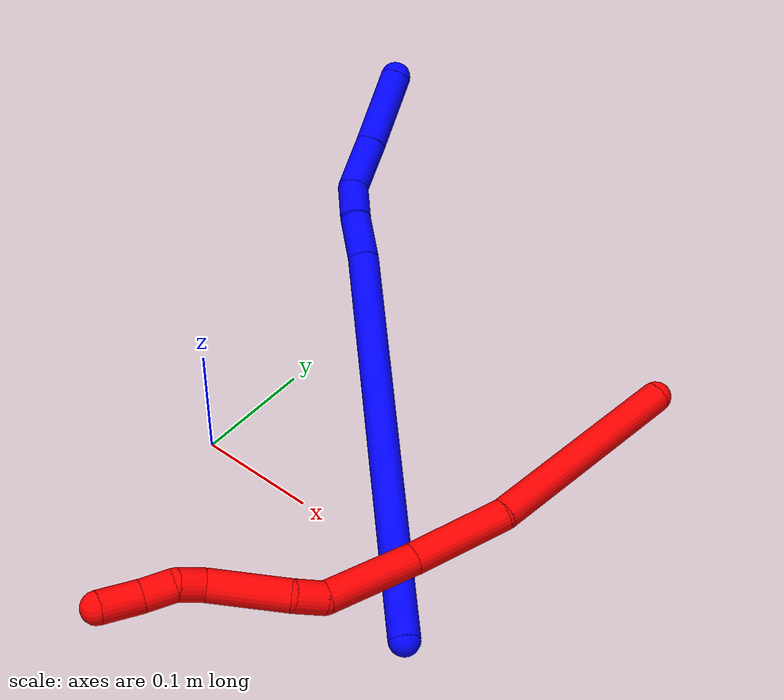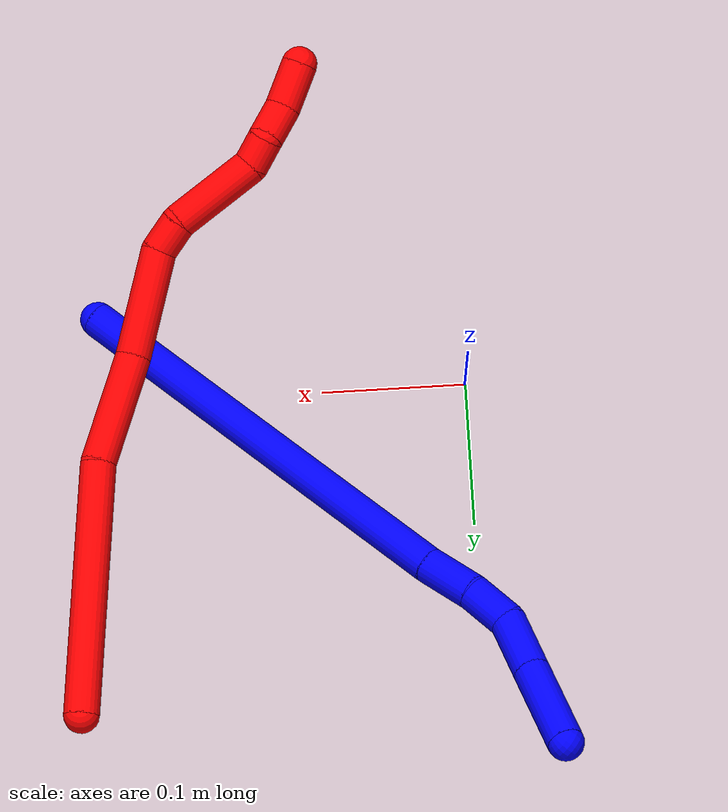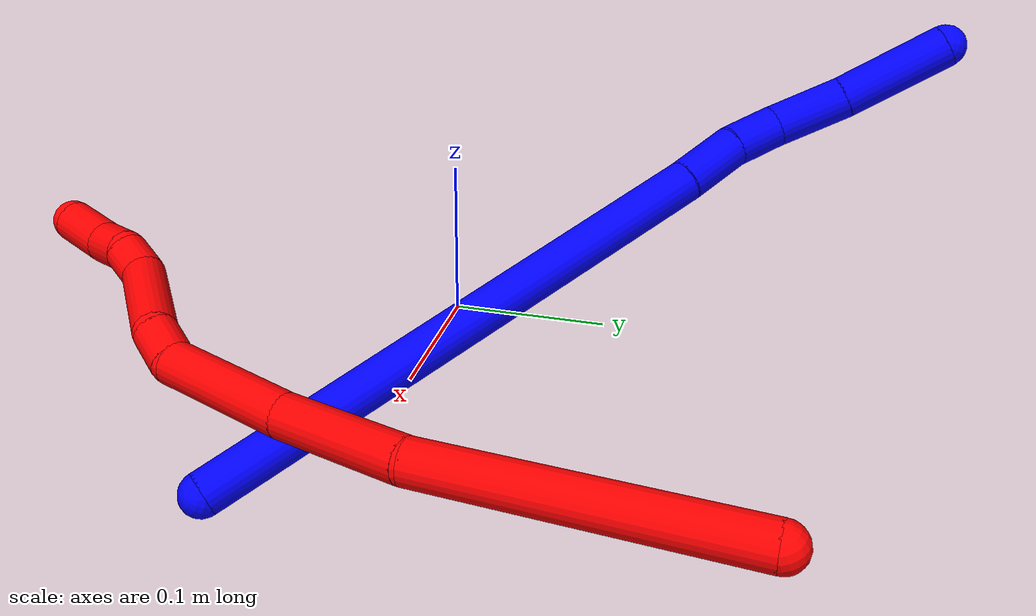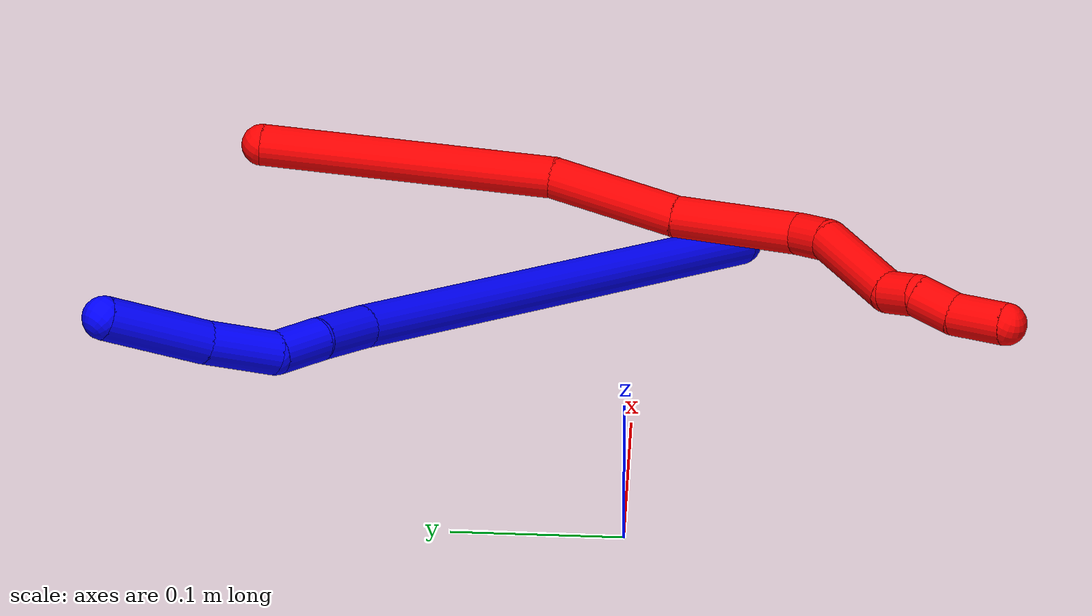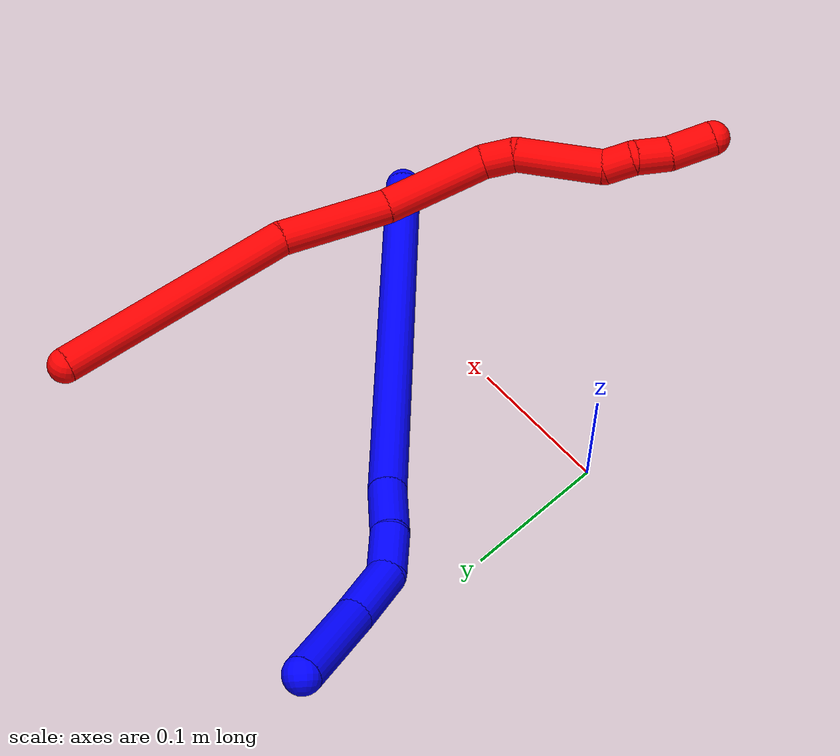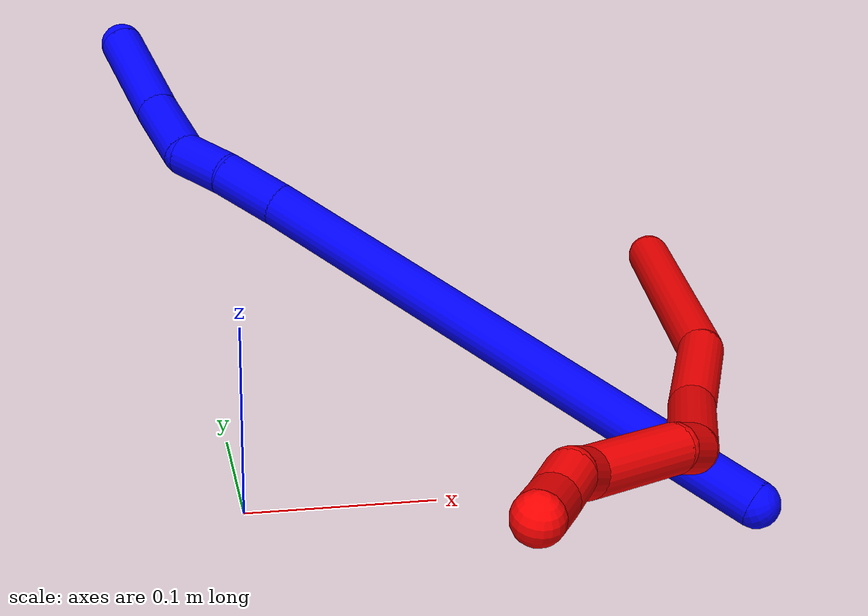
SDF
<sdf version="1.7">
 <world name="default">
  <plugin name="TubeGeneratorPlugin" filename="libtube_generator_plugin.so"/>
  <model name="photoneo_s_sensor">
   <static>1</static>
   <pose>0 0 2 1.57079 1.57079 3.14159</pose>
   <link name="link">
    <inertial><mass>0.1</mass></inertial>
    <sensor name="sensor" type="depth">
     <update_rate>30</update_rate>
     <camera>
      <horizontal_fov>1.22</horizontal_fov>
      <image><width>1920</width><height>1200</height><format>B8G8R8</format></image>
      <clip><near>0.1</near><far>4</far></clip>
      <depth_camera><output>points</output></depth_camera>
     </camera>
     <plugin name="camera_plugin" filename="libgazebo_ros_depth_camera.so">
      <baseline>0.2</baseline>
      <alwaysOn>1</alwaysOn>
      <updateRate>0.0</updateRate>
      <cameraName>camera_ir</cameraName>
      <imageTopicName>/camera/color/image_raw</imageTopicName>
      <cameraInfoTopicName>/camera/color/camera_info</cameraInfoTopicName>
      <depthImageTopicName>/camera/depth/image_raw</depthImageTopicName>
      <depthImageCameraInfoTopicName>/camera/depth/camera_info</depthImageCameraInfoTopicName>
      <pointCloudTopicName>/camera/depth/points</pointCloudTopicName>
      <frameName>fr_optical</frameName>
      <pointCloudCutoff>0.1</pointCloudCutoff>
      <pointCloudCutoffMax>2.0</pointCloudCutoffMax>
      <distortionK1>0</distortionK1>
      <distortionK2>0</distortionK2>
      <distortionK3>0</distortionK3>
      <distortionT1>0</distortionT1>
      <distortionT2>0</distortionT2>
      <CxPrime>0</CxPrime>
      <Cx>0</Cx>
      <Cy>0</Cy>
      <focalLength>0</focalLength>
      <hackBaseline>0</hackBaseline>
     </plugin>
    </sensor>
   </link>
  </model>
  <gravity>0 0 -9.8</gravity>
  <magnetic_field>6e-06 2.3e-05 -4.2e-05</magnetic_field>
  <atmosphere type="adiabatic"/>
  <physics name="default_physics" default="0" type="ode">
   <max_step_size>0.003</max_step_size>
   <real_time_factor>1</real_time_factor>
   <real_time_update_rate>1000</real_time_update_rate>
   <max_contacts>10000</max_contacts>
   <ode>
    <solver>
     <type>quick</type>
     <iters>100</iters>
     <sor>1.3</sor>
     <use_dynamic_moi_rescaling>0</use_dynamic_moi_rescaling>
    </solver>
    <constraints>
     <contact_max_correcting_vel>0</contact_max_correcting_vel>
     <contact_surface_layer>0.001</contact_surface_layer>
     <cfm>0</cfm>
     <erp>0.2</erp>
    </constraints>
   </ode>
  </physics>
  <scene><ambient>0.4 0.4 0.4 1</ambient><background>0.7 0.7 0.7 1</background><shadows>0</shadows></scene>
  <audio><device>default</device></audio>
  <spherical_coordinates>
   <surface_model>EARTH_WGS84</surface_model>
   <latitude_deg>0</latitude_deg>
   <longitude_deg>0</longitude_deg>
   <elevation>0</elevation>
   <heading_deg>0</heading_deg>
  </spherical_coordinates>
  <model name="bin">
   <static>1</static>
   <link name="bottom">
    <collision name="collision-bottom">
     <pose>0 0 -0.01 0 -0 0</pose>
     <geometry><box><size>0.8 0.6 0.02</size></box></geometry>
     <surface>
      <friction><ode><mu>100</mu><mu2>100</mu2></ode></friction>
      <contact><collide_bitmask>65535</collide_bitmask></contact>
     </surface>
    </collision>
   </link>
   <link name="west_wall">
    <collision name="collision-west_wall">
     <pose>-0.41 0 0.1 0 -0 0</pose>
     <geometry><box><size>0.02 0.6 0.2</size></box></geometry>
     <surface>
      <friction><ode><mu>100</mu><mu2>100</mu2></ode></friction>
      <contact><collide_bitmask>65535</collide_bitmask></contact>
     </surface>
    </collision>
   </link>
   <link name="east_wall">
    <collision name="collision-east_wall">
     <pose>0.41 0 0.1 0 -0 0</pose>
     <geometry><box><size>0.02 0.6 0.2</size></box></geometry>
     <surface>
      <friction><ode><mu>100</mu><mu2>100</mu2></ode></friction>
      <contact><collide_bitmask>65535</collide_bitmask></contact>
     </surface>
    </collision>
   </link>
   <link name="south_wall">
    <collision name="collision-south_wall">
     <pose>0 -0.31 0.1 0 -0 0</pose>
     <geometry><box><size>0.8 0.02 0.2</size></box></geometry>
     <surface>
      <friction><ode><mu>100</mu><mu2>100</mu2></ode></friction>
      <contact><collide_bitmask>65535</collide_bitmask></contact>
     </surface>
    </collision>
   </link>
   <link name="north_wall">
    <collision name="collision-north_wall">
     <pose>0 0.31 0.1 0 -0 0</pose>
     <geometry><box><size>0.8 0.02 0.2</size></box></geometry>
     <surface>
      <friction><ode><mu>100</mu><mu2>100</mu2></ode></friction>
      <contact><collide_bitmask>65535</collide_bitmask></contact>
     </surface>
    </collision>
   </link>
  </model>
  <model name="1">
   <static>0</static>
   <link name="1">
    <collision name="collision-cylinder-e_1_1_4">
     <pose>-0.066134 0.08305 0.120445 -0.603663 -0.424545 0.134</pose>
     <geometry><cylinder><radius>0.0125</radius><length>0.321111</length></cylinder></geometry>
     <surface>
      <friction><ode><mu>1.16</mu><mu2>1.16</mu2><slip1>0</slip1><slip2>0</slip2></ode></friction>
      <contact><ode><kp>1e+06</kp><kd>1</kd><max_vel>0</max_vel><min_depth>0.001</min_depth></ode></contact>
     </surface>
    </collision>
    <visual name="visual-cylinder-e_1_1_4">
     <pose>-0.066134 0.08305 0.120445 -0.603663 -0.424545 0.134</pose>
     <geometry><cylinder><radius>0.0125</radius><length>0.321111</length></cylinder></geometry>
     <material><ambient>0 0 1 1</ambient></material>
    </visual>
    <collision name="collision-cylinder-e_2_4_5">
     <pose>-0.139021 0.176937 0.25525 -0.646451 -0.359113 0.121453</pose>
     <geometry><cylinder><radius>0.0125</radius><length>0.038432</length></cylinder></geometry>
     <surface>
      <friction><ode><mu>1.16</mu><mu2>1.16</mu2><slip1>0</slip1><slip2>0</slip2></ode></friction>
      <contact><ode><kp>1e+06</kp><kd>1</kd><max_vel>0</max_vel><min_depth>0.001</min_depth></ode></contact>
     </surface>
    </collision>
    <visual name="visual-cylinder-e_2_4_5">
     <pose>-0.139021 0.176937 0.25525 -0.646451 -0.359113 0.121453</pose>
     <geometry><cylinder><radius>0.0125</radius><length>0.038432</length></cylinder></geometry>
     <material><ambient>0 0 1 1</ambient></material>
    </visual>
    <collision name="collision-cylinder-e_3_5_6">
     <pose>-0.152063 0.194496 0.282812 -0.471001 -0.401463 0.09757</pose>
     <geometry><cylinder><radius>0.0125</radius><length>0.032187</length></cylinder></geometry>
     <surface>
      <friction><ode><mu>1.16</mu><mu2>1.16</mu2><slip1>0</slip1><slip2>0</slip2></ode></friction>
      <contact><ode><kp>1e+06</kp><kd>1</kd><max_vel>0</max_vel><min_depth>0.001</min_depth></ode></contact>
     </surface>
    </collision>
    <visual name="visual-cylinder-e_3_5_6">
     <pose>-0.152063 0.194496 0.282812 -0.471001 -0.401463 0.09757</pose>
     <geometry><cylinder><radius>0.0125</radius><length>0.032187</length></cylinder></geometry>
     <material><ambient>0 0 1 1</ambient></material>
    </visual>
    <collision name="collision-cylinder-e_4_6_7">
     <pose>-0.175037 0.207954 0.308594 -0.491585 -0.863219 0.230062</pose>
     <geometry><cylinder><radius>0.0125</radius><length>0.043913</length></cylinder></geometry>
     <surface>
      <friction><ode><mu>1.16</mu><mu2>1.16</mu2><slip1>0</slip1><slip2>0</slip2></ode></friction>
      <contact><ode><kp>1e+06</kp><kd>1</kd><max_vel>0</max_vel><min_depth>0.001</min_depth></ode></contact>
     </surface>
    </collision>
    <visual name="visual-cylinder-e_4_6_7">
     <pose>-0.175037 0.207954 0.308594 -0.491585 -0.863219 0.230062</pose>
     <geometry><cylinder><radius>0.0125</radius><length>0.043913</length></cylinder></geometry>
     <material><ambient>0 0 1 1</ambient></material>
    </visual>
    <collision name="collision-cylinder-e_5_7_2">
     <pose>-0.216682 0.226455 0.337732 -0.617768 -0.887727 0.30117</pose>
     <geometry><cylinder><radius>0.0125</radius><length>0.064357</length></cylinder></geometry>
     <surface>
      <friction><ode><mu>1.16</mu><mu2>1.16</mu2><slip1>0</slip1><slip2>0</slip2></ode></friction>
      <contact><ode><kp>1e+06</kp><kd>1</kd><max_vel>0</max_vel><min_depth>0.001</min_depth></ode></contact>
     </surface>
    </collision>
    <visual name="visual-cylinder-e_5_7_2">
     <pose>-0.216682 0.226455 0.337732 -0.617768 -0.887727 0.30117</pose>
     <geometry><cylinder><radius>0.0125</radius><length>0.064357</length></cylinder></geometry>
     <material><ambient>0 0 1 1</ambient></material>
    </visual>
    <collision name="collision-sphere-2">
     <pose>-0.241641 0.238219 0.354289 0 -0 0</pose>
     <geometry><sphere><radius>0.0125</radius></sphere></geometry>
     <surface>
      <friction><ode><mu>1.16</mu><mu2>1.16</mu2><slip1>0</slip1><slip2>0</slip2></ode></friction>
      <contact><ode><kp>1e+06</kp><kd>1</kd><max_vel>0</max_vel><min_depth>0.001</min_depth></ode></contact>
     </surface>
    </collision>
    <visual name="visual-sphere-2">
     <pose>-0.241641 0.238219 0.354289 0 -0 0</pose>
     <geometry><sphere><radius>0.0125</radius></sphere></geometry>
     <material><ambient>0 0 1 1</ambient></material>
    </visual>
    <collision name="collision-sphere-7">
     <pose>-0.191723 0.214691 0.321176 0 -0 0</pose>
     <geometry><sphere><radius>0.0125</radius></sphere></geometry>
     <surface>
      <friction><ode><mu>1.16</mu><mu2>1.16</mu2><slip1>0</slip1><slip2>0</slip2></ode></friction>
      <contact><ode><kp>1e+06</kp><kd>1</kd><max_vel>0</max_vel><min_depth>0.001</min_depth></ode></contact>
     </surface>
    </collision>
    <visual name="visual-sphere-7">
     <pose>-0.191723 0.214691 0.321176 0 -0 0</pose>
     <geometry><sphere><radius>0.0125</radius></sphere></geometry>
     <material><ambient>0 0 1 1</ambient></material>
    </visual>
    <collision name="collision-sphere-6">
     <pose>-0.158352 0.201218 0.296013 0 -0 0</pose>
     <geometry><sphere><radius>0.0125</radius></sphere></geometry>
     <surface>
      <friction><ode><mu>1.16</mu><mu2>1.16</mu2><slip1>0</slip1><slip2>0</slip2></ode></friction>
      <contact><ode><kp>1e+06</kp><kd>1</kd><max_vel>0</max_vel><min_depth>0.001</min_depth></ode></contact>
     </surface>
    </collision>
    <visual name="visual-sphere-6">
     <pose>-0.158352 0.201218 0.296013 0 -0 0</pose>
     <geometry><sphere><radius>0.0125</radius></sphere></geometry>
     <material><ambient>0 0 1 1</ambient></material>
    </visual>
    <collision name="collision-sphere-5">
     <pose>-0.145774 0.187773 0.269611 0 -0 0</pose>
     <geometry><sphere><radius>0.0125</radius></sphere></geometry>
     <surface>
      <friction><ode><mu>1.16</mu><mu2>1.16</mu2><slip1>0</slip1><slip2>0</slip2></ode></friction>
      <contact><ode><kp>1e+06</kp><kd>1</kd><max_vel>0</max_vel><min_depth>0.001</min_depth></ode></contact>
     </surface>
    </collision>
    <visual name="visual-sphere-5">
     <pose>-0.145774 0.187773 0.269611 0 -0 0</pose>
     <geometry><sphere><radius>0.0125</radius></sphere></geometry>
     <material><ambient>0 0 1 1</ambient></material>
    </visual>
    <collision name="collision-sphere-1">
     <geometry><sphere><radius>0.0125</radius></sphere></geometry>
     <surface>
      <friction><ode><mu>1.16</mu><mu2>1.16</mu2><slip1>0</slip1><slip2>0</slip2></ode></friction>
      <contact><ode><kp>1e+06</kp><kd>1</kd><max_vel>0</max_vel><min_depth>0.001</min_depth></ode></contact>
     </surface>
    </collision>
    <visual name="visual-sphere-1">
     <geometry><sphere><radius>0.0125</radius></sphere></geometry>
     <material><ambient>0 0 1 1</ambient></material>
    </visual>
    <collision name="collision-sphere-4">
     <pose>-0.132267 0.1661 0.24089 0 -0 0</pose>
     <geometry><sphere><radius>0.0125</radius></sphere></geometry>
     <surface>
      <friction><ode><mu>1.16</mu><mu2>1.16</mu2><slip1>0</slip1><slip2>0</slip2></ode></friction>
      <contact><ode><kp>1e+06</kp><kd>1</kd><max_vel>0</max_vel><min_depth>0.001</min_depth></ode></contact>
     </surface>
    </collision>
    <visual name="visual-sphere-4">
     <pose>-0.132267 0.1661 0.24089 0 -0 0</pose>
     <geometry><sphere><radius>0.0125</radius></sphere></geometry>
     <material><ambient>0 0 1 1</ambient></material>
    </visual>
    <inertial>
     <pose>-0.10621 0.126869 0.185751 0 -0 0</pose>
     <mass>0.5</mass>
     <inertia>
      <ixx>0.002859</ixx>
      <ixy>0</ixy>
      <ixz>0</ixz>
      <iyy>0.002751</iyy>
      <iyz>0</iyz>
      <izz>-0.000252</izz>
     </inertia>
    </inertial>
   </link>
   <pose>0.253375 -0.058871 0.011492 1.98701 0.486429 -2.03287</pose>
  </model>
  <model name="2">
   <static>0</static>
   <link name="2">
    <collision name="collision-cylinder-e_1_1_4">
     <pose>-0.062801 -0.055184 -0.028021 2.04064 -0.792697 -1.19689</pose>
     <geometry><cylinder><radius>0.0125</radius><length>0.176346</length></cylinder></geometry>
     <surface>
      <friction><ode><mu>1.16</mu><mu2>1.16</mu2><slip1>0</slip1><slip2>0</slip2></ode></friction>
      <contact><ode><kp>1e+06</kp><kd>1</kd><max_vel>0</max_vel><min_depth>0.001</min_depth></ode></contact>
     </surface>
    </collision>
    <visual name="visual-cylinder-e_1_1_4">
     <pose>-0.062801 -0.055184 -0.028021 2.04064 -0.792697 -1.19689</pose>
     <geometry><cylinder><radius>0.0125</radius><length>0.176346</length></cylinder></geometry>
     <material><ambient>1 0 0 1</ambient></material>
    </visual>
    <collision name="collision-cylinder-e_2_4_5">
     <pose>-0.147521 -0.141983 -0.065911 1.87336 -0.584636 -0.776819</pose>
     <geometry><cylinder><radius>0.0125</radius><length>0.07943</length></cylinder></geometry>
     <surface>
      <friction><ode><mu>1.16</mu><mu2>1.16</mu2><slip1>0</slip1><slip2>0</slip2></ode></friction>
      <contact><ode><kp>1e+06</kp><kd>1</kd><max_vel>0</max_vel><min_depth>0.001</min_depth></ode></contact>
     </surface>
    </collision>
    <visual name="visual-cylinder-e_2_4_5">
     <pose>-0.147521 -0.141983 -0.065911 1.87336 -0.584636 -0.776819</pose>
     <geometry><cylinder><radius>0.0125</radius><length>0.07943</length></cylinder></geometry>
     <material><ambient>1 0 0 1</ambient></material>
    </visual>
    <collision name="collision-cylinder-e_3_5_6">
     <pose>-0.190582 -0.20153 -0.091291 2.07773 -0.584578 -0.945289</pose>
     <geometry><cylinder><radius>0.0125</radius><length>0.076624</length></cylinder></geometry>
     <surface>
      <friction><ode><mu>1.16</mu><mu2>1.16</mu2><slip1>0</slip1><slip2>0</slip2></ode></friction>
      <contact><ode><kp>1e+06</kp><kd>1</kd><max_vel>0</max_vel><min_depth>0.001</min_depth></ode></contact>
     </surface>
    </collision>
    <visual name="visual-cylinder-e_3_5_6">
     <pose>-0.190582 -0.20153 -0.091291 2.07773 -0.584578 -0.945289</pose>
     <geometry><cylinder><radius>0.0125</radius><length>0.076624</length></cylinder></geometry>
     <material><ambient>1 0 0 1</ambient></material>
    </visual>
    <collision name="collision-cylinder-e_4_6_7">
     <pose>-0.213317 -0.239749 -0.113253 2.13089 -0.13044 -0.23501</pose>
     <geometry><cylinder><radius>0.0125</radius><length>0.024493</length></cylinder></geometry>
     <surface>
      <friction><ode><mu>1.16</mu><mu2>1.16</mu2><slip1>0</slip1><slip2>0</slip2></ode></friction>
      <contact><ode><kp>1e+06</kp><kd>1</kd><max_vel>0</max_vel><min_depth>0.001</min_depth></ode></contact>
     </surface>
    </collision>
    <visual name="visual-cylinder-e_4_6_7">
     <pose>-0.213317 -0.239749 -0.113253 2.13089 -0.13044 -0.23501</pose>
     <geometry><cylinder><radius>0.0125</radius><length>0.024493</length></cylinder></geometry>
     <material><ambient>1 0 0 1</ambient></material>
    </visual>
    <collision name="collision-cylinder-e_5_7_8">
     <pose>-0.213607 -0.280757 -0.127305 1.81335 0.041148 0.052565</pose>
     <geometry><cylinder><radius>0.0125</radius><length>0.063347</length></cylinder></geometry>
     <surface>
      <friction><ode><mu>1.16</mu><mu2>1.16</mu2><slip1>0</slip1><slip2>0</slip2></ode></friction>
      <contact><ode><kp>1e+06</kp><kd>1</kd><max_vel>0</max_vel><min_depth>0.001</min_depth></ode></contact>
     </surface>
    </collision>
    <visual name="visual-cylinder-e_5_7_8">
     <pose>-0.213607 -0.280757 -0.127305 1.81335 0.041148 0.052565</pose>
     <geometry><cylinder><radius>0.0125</radius><length>0.063347</length></cylinder></geometry>
     <material><ambient>1 0 0 1</ambient></material>
    </visual>
    <collision name="collision-cylinder-e_6_8_9">
     <pose>-0.214642 -0.320147 -0.141071 2.18891 -0.216303 -0.414806</pose>
     <geometry><cylinder><radius>0.0125</radius><length>0.021783</length></cylinder></geometry>
     <surface>
      <friction><ode><mu>1.16</mu><mu2>1.16</mu2><slip1>0</slip1><slip2>0</slip2></ode></friction>
      <contact><ode><kp>1e+06</kp><kd>1</kd><max_vel>0</max_vel><min_depth>0.001</min_depth></ode></contact>
     </surface>
    </collision>
    <visual name="visual-cylinder-e_6_8_9">
     <pose>-0.214642 -0.320147 -0.141071 2.18891 -0.216303 -0.414806</pose>
     <geometry><cylinder><radius>0.0125</radius><length>0.021783</length></cylinder></geometry>
     <material><ambient>1 0 0 1</ambient></material>
    </visual>
    <collision name="collision-cylinder-e_7_9_10">
     <pose>-0.222121 -0.340081 -0.149511 1.77014 -0.420703 -0.510532</pose>
     <geometry><cylinder><radius>0.0125</radius><length>0.025181</length></cylinder></geometry>
     <surface>
      <friction><ode><mu>1.16</mu><mu2>1.16</mu2><slip1>0</slip1><slip2>0</slip2></ode></friction>
      <contact><ode><kp>1e+06</kp><kd>1</kd><max_vel>0</max_vel><min_depth>0.001</min_depth></ode></contact>
     </surface>
    </collision>
    <visual name="visual-cylinder-e_7_9_10">
     <pose>-0.222121 -0.340081 -0.149511 1.77014 -0.420703 -0.510532</pose>
     <geometry><cylinder><radius>0.0125</radius><length>0.025181</length></cylinder></geometry>
     <material><ambient>1 0 0 1</ambient></material>
    </visual>
    <collision name="collision-cylinder-e_8_10_2">
     <pose>-0.234246 -0.364407 -0.158825 2.06504 -0.439888 -0.716516</pose>
     <geometry><cylinder><radius>0.0125</radius><length>0.032795</length></cylinder></geometry>
     <surface>
      <friction><ode><mu>1.16</mu><mu2>1.16</mu2><slip1>0</slip1><slip2>0</slip2></ode></friction>
      <contact><ode><kp>1e+06</kp><kd>1</kd><max_vel>0</max_vel><min_depth>0.001</min_depth></ode></contact>
     </surface>
    </collision>
    <visual name="visual-cylinder-e_8_10_2">
     <pose>-0.234246 -0.364407 -0.158825 2.06504 -0.439888 -0.716516</pose>
     <geometry><cylinder><radius>0.0125</radius><length>0.032795</length></cylinder></geometry>
     <material><ambient>1 0 0 1</ambient></material>
    </visual>
    <collision name="collision-sphere-2">
     <pose>-0.241229 -0.377468 -0.165863 0 -0 0</pose>
     <geometry><sphere><radius>0.0125</radius></sphere></geometry>
     <surface>
      <friction><ode><mu>1.16</mu><mu2>1.16</mu2><slip1>0</slip1><slip2>0</slip2></ode></friction>
      <contact><ode><kp>1e+06</kp><kd>1</kd><max_vel>0</max_vel><min_depth>0.001</min_depth></ode></contact>
     </surface>
    </collision>
    <visual name="visual-sphere-2">
     <pose>-0.241229 -0.377468 -0.165863 0 -0 0</pose>
     <geometry><sphere><radius>0.0125</radius></sphere></geometry>
     <material><ambient>1 0 0 1</ambient></material>
    </visual>
    <collision name="collision-sphere-10">
     <pose>-0.227263 -0.351346 -0.151787 0 -0 0</pose>
     <geometry><sphere><radius>0.0125</radius></sphere></geometry>
     <surface>
      <friction><ode><mu>1.16</mu><mu2>1.16</mu2><slip1>0</slip1><slip2>0</slip2></ode></friction>
      <contact><ode><kp>1e+06</kp><kd>1</kd><max_vel>0</max_vel><min_depth>0.001</min_depth></ode></contact>
     </surface>
    </collision>
    <visual name="visual-sphere-10">
     <pose>-0.227263 -0.351346 -0.151787 0 -0 0</pose>
     <geometry><sphere><radius>0.0125</radius></sphere></geometry>
     <material><ambient>1 0 0 1</ambient></material>
    </visual>
    <collision name="collision-sphere-9">
     <pose>-0.216979 -0.328816 -0.147235 0 -0 0</pose>
     <geometry><sphere><radius>0.0125</radius></sphere></geometry>
     <surface>
      <friction><ode><mu>1.16</mu><mu2>1.16</mu2><slip1>0</slip1><slip2>0</slip2></ode></friction>
      <contact><ode><kp>1e+06</kp><kd>1</kd><max_vel>0</max_vel><min_depth>0.001</min_depth></ode></contact>
     </surface>
    </collision>
    <visual name="visual-sphere-9">
     <pose>-0.216979 -0.328816 -0.147235 0 -0 0</pose>
     <geometry><sphere><radius>0.0125</radius></sphere></geometry>
     <material><ambient>1 0 0 1</ambient></material>
    </visual>
    <collision name="collision-sphere-4">
     <pose>-0.125602 -0.110369 -0.056042 0 -0 0</pose>
     <geometry><sphere><radius>0.0125</radius></sphere></geometry>
     <surface>
      <friction><ode><mu>1.16</mu><mu2>1.16</mu2><slip1>0</slip1><slip2>0</slip2></ode></friction>
      <contact><ode><kp>1e+06</kp><kd>1</kd><max_vel>0</max_vel><min_depth>0.001</min_depth></ode></contact>
     </surface>
    </collision>
    <visual name="visual-sphere-4">
     <pose>-0.125602 -0.110369 -0.056042 0 -0 0</pose>
     <geometry><sphere><radius>0.0125</radius></sphere></geometry>
     <material><ambient>1 0 0 1</ambient></material>
    </visual>
    <collision name="collision-sphere-1">
     <geometry><sphere><radius>0.0125</radius></sphere></geometry>
     <surface>
      <friction><ode><mu>1.16</mu><mu2>1.16</mu2><slip1>0</slip1><slip2>0</slip2></ode></friction>
      <contact><ode><kp>1e+06</kp><kd>1</kd><max_vel>0</max_vel><min_depth>0.001</min_depth></ode></contact>
     </surface>
    </collision>
    <visual name="visual-sphere-1">
     <geometry><sphere><radius>0.0125</radius></sphere></geometry>
     <material><ambient>1 0 0 1</ambient></material>
    </visual>
    <collision name="collision-sphere-8">
     <pose>-0.212304 -0.311477 -0.134906 0 -0 0</pose>
     <geometry><sphere><radius>0.0125</radius></sphere></geometry>
     <surface>
      <friction><ode><mu>1.16</mu><mu2>1.16</mu2><slip1>0</slip1><slip2>0</slip2></ode></friction>
      <contact><ode><kp>1e+06</kp><kd>1</kd><max_vel>0</max_vel><min_depth>0.001</min_depth></ode></contact>
     </surface>
    </collision>
    <visual name="visual-sphere-8">
     <pose>-0.212304 -0.311477 -0.134906 0 -0 0</pose>
     <geometry><sphere><radius>0.0125</radius></sphere></geometry>
     <material><ambient>1 0 0 1</ambient></material>
    </visual>
    <collision name="collision-sphere-5">
     <pose>-0.169439 -0.173598 -0.075779 0 -0 0</pose>
     <geometry><sphere><radius>0.0125</radius></sphere></geometry>
     <surface>
      <friction><ode><mu>1.16</mu><mu2>1.16</mu2><slip1>0</slip1><slip2>0</slip2></ode></friction>
      <contact><ode><kp>1e+06</kp><kd>1</kd><max_vel>0</max_vel><min_depth>0.001</min_depth></ode></contact>
     </surface>
    </collision>
    <visual name="visual-sphere-5">
     <pose>-0.169439 -0.173598 -0.075779 0 -0 0</pose>
     <geometry><sphere><radius>0.0125</radius></sphere></geometry>
     <material><ambient>1 0 0 1</ambient></material>
    </visual>
    <collision name="collision-sphere-6">
     <pose>-0.211724 -0.229462 -0.106802 0 -0 0</pose>
     <geometry><sphere><radius>0.0125</radius></sphere></geometry>
     <surface>
      <friction><ode><mu>1.16</mu><mu2>1.16</mu2><slip1>0</slip1><slip2>0</slip2></ode></friction>
      <contact><ode><kp>1e+06</kp><kd>1</kd><max_vel>0</max_vel><min_depth>0.001</min_depth></ode></contact>
     </surface>
    </collision>
    <visual name="visual-sphere-6">
     <pose>-0.211724 -0.229462 -0.106802 0 -0 0</pose>
     <geometry><sphere><radius>0.0125</radius></sphere></geometry>
     <material><ambient>1 0 0 1</ambient></material>
    </visual>
    <collision name="collision-sphere-7">
     <pose>-0.21491 -0.250036 -0.119704 0 -0 0</pose>
     <geometry><sphere><radius>0.0125</radius></sphere></geometry>
     <surface>
      <friction><ode><mu>1.16</mu><mu2>1.16</mu2><slip1>0</slip1><slip2>0</slip2></ode></friction>
      <contact><ode><kp>1e+06</kp><kd>1</kd><max_vel>0</max_vel><min_depth>0.001</min_depth></ode></contact>
     </surface>
    </collision>
    <visual name="visual-sphere-7">
     <pose>-0.21491 -0.250036 -0.119704 0 -0 0</pose>
     <geometry><sphere><radius>0.0125</radius></sphere></geometry>
     <material><ambient>1 0 0 1</ambient></material>
    </visual>
    <inertial>
     <pose>-0.148205 -0.175194 -0.080113 0 -0 0</pose>
     <mass>0.5</mass>
     <inertia>
      <ixx>-0.000182</ixx>
      <ixy>0</ixy>
      <ixz>0</ixz>
      <iyy>-0.000189</iyy>
      <iyz>0</iyz>
      <izz>0.000754</izz>
     </inertia>
    </inertial>
   </link>
   <pose>0.277168 0.228632 0.057308 2.9766 -0.304443 2.19087</pose>
  </model>
 </world>
</sdf>
